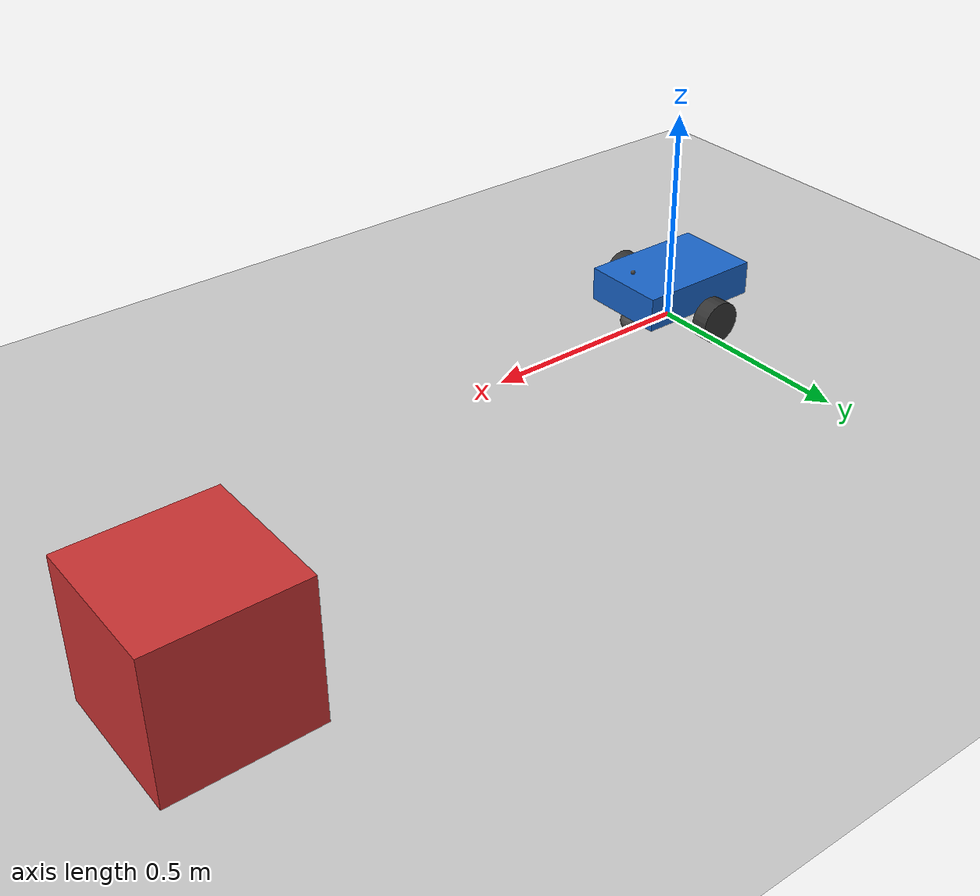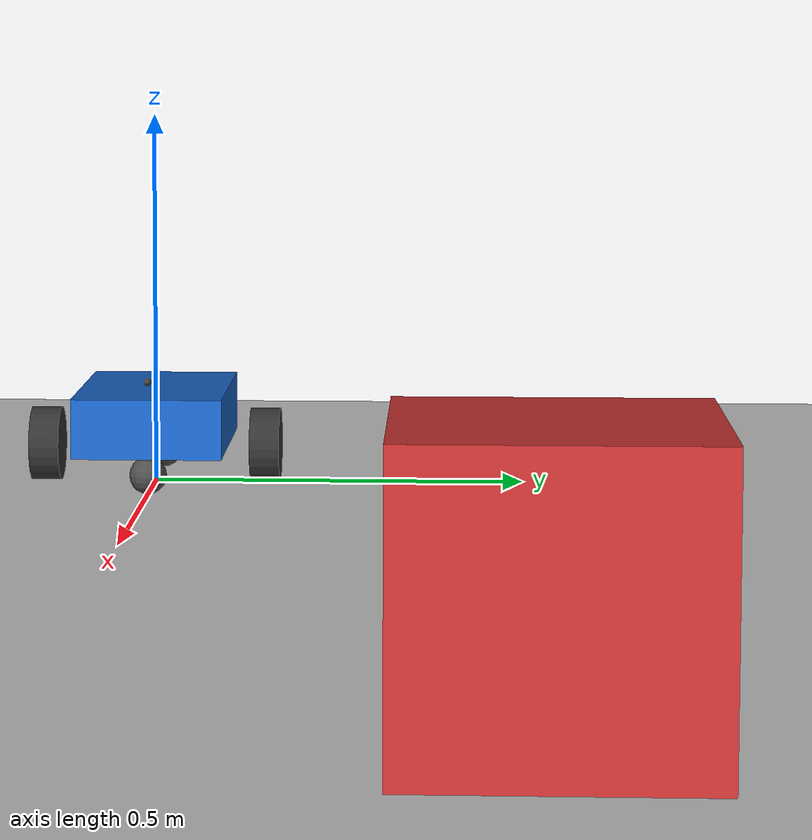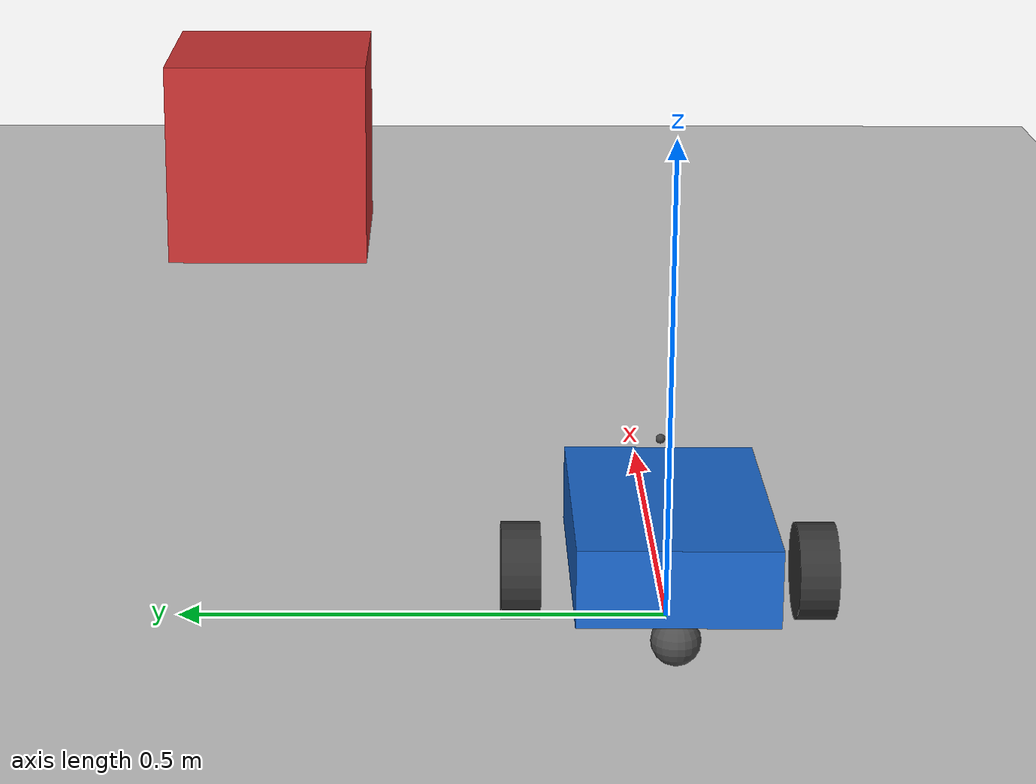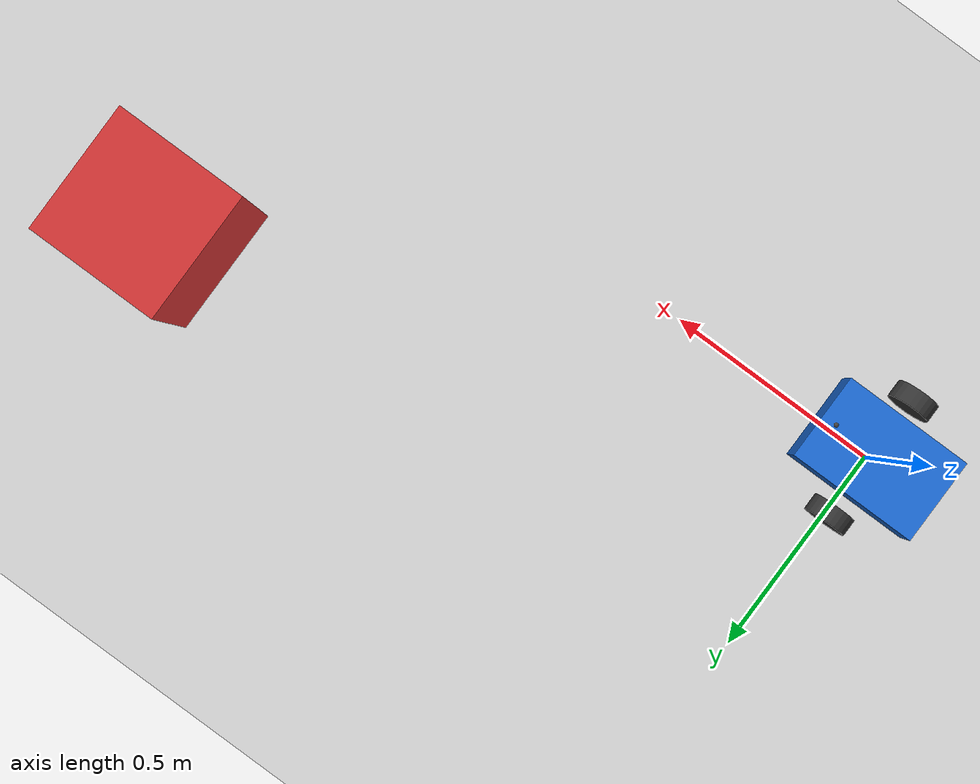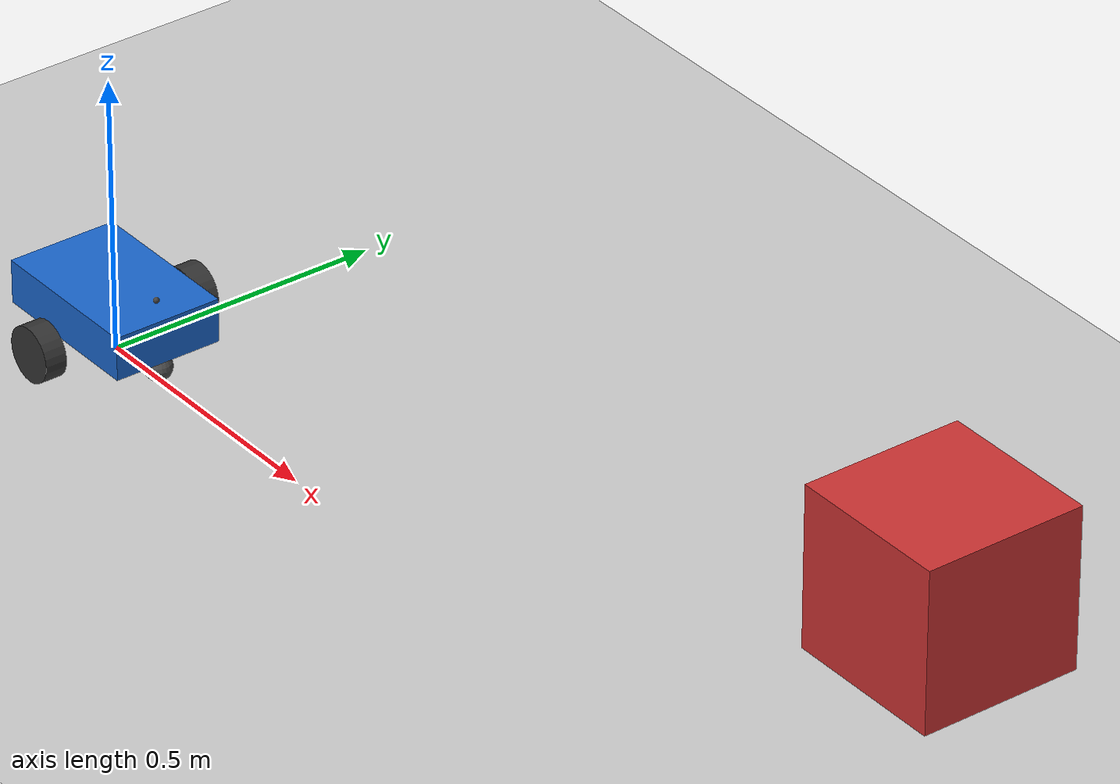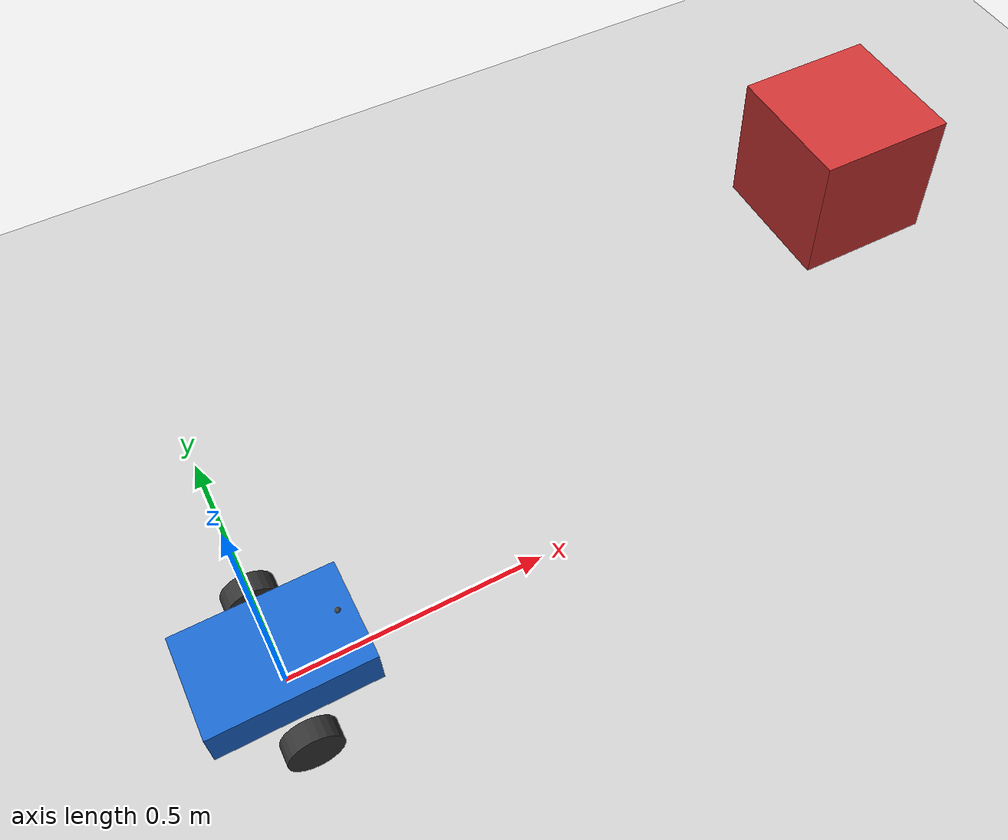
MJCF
<mujoco model="otonav_scene_goal">
  <include file="otonav.xml"/>

  <worldbody>
    <!-- Obstacle: 0.5 m off the centerline, ~1.5 m ahead. Closest approach to
         the straight path is ~0.5 m, comfortably above the 0.3 m clearance bar. -->
    <body name="obstacle" pos="1.5 0.5 0.15">
      <geom name="obstacle_geom" type="box" size="0.15 0.15 0.15" rgba="0.8 0.2 0.2 1"/>
    </body>
  </worldbody>
</mujoco>

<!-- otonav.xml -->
<mujoco model="otonav">
  <compiler angle="radian" autolimits="true"/>
  <option timestep="0.002" integrator="implicitfast" gravity="0 0 -9.81"/>

  <default>
    <joint damping="0.01"/>
    <geom friction="1.0 0.005 0.0001"/>
    <default class="wheel">
      <geom type="cylinder" size="0.05 0.02" zaxis="0 1 0" rgba="0.2 0.2 0.2 1"/>
    </default>
  </default>

  <worldbody>
    <light pos="0 0 3" dir="0 0 -1"/>
    <geom name="floor" type="plane" size="20 20 0.1" rgba="0.8 0.8 0.8 1"/>

    <body name="base_link" pos="0 0 0.05">
      <freejoint name="base_free"/>
      <inertial pos="0 0 0.02" mass="3.0" diaginertia="0.02 0.03 0.04"/>
      <geom name="chassis" type="box" size="0.15 0.10 0.04" pos="0 0 0.04" rgba="0.1 0.4 0.8 1"/>

      <geom name="caster_rear" type="sphere" size="0.025" pos="-0.12 0 -0.025"
            friction="0.0001 0.0001 0.0001" condim="1" rgba="0.3 0.3 0.3 1"/>
      <geom name="caster_front" type="sphere" size="0.025" pos="0.12 0 -0.025"
            friction="0.0001 0.0001 0.0001" condim="1" rgba="0.3 0.3 0.3 1"/>

      <!-- IMU mounting point -->
      <site name="imu_site" pos="0 0 0.04" size="0.01"/>

      <!-- 13-beam forward lidar fan (-90..90 deg, 15 deg step); zaxis = beam ray -->
      <site name="lidar_0" pos="0.12 0 0.10" zaxis="0.0 -1.0 0"/>
      <site name="lidar_1" pos="0.12 0 0.10" zaxis="0.258819 -0.965926 0"/>
      <site name="lidar_2" pos="0.12 0 0.10" zaxis="0.5 -0.866025 0"/>
      <site name="lidar_3" pos="0.12 0 0.10" zaxis="0.707107 -0.707107 0"/>
      <site name="lidar_4" pos="0.12 0 0.10" zaxis="0.866025 -0.5 0"/>
      <site name="lidar_5" pos="0.12 0 0.10" zaxis="0.965926 -0.258819 0"/>
      <site name="lidar_6" pos="0.12 0 0.10" zaxis="1.0 0.0 0"/>
      <site name="lidar_7" pos="0.12 0 0.10" zaxis="0.965926 0.258819 0"/>
      <site name="lidar_8" pos="0.12 0 0.10" zaxis="0.866025 0.5 0"/>
      <site name="lidar_9" pos="0.12 0 0.10" zaxis="0.707107 0.707107 0"/>
      <site name="lidar_10" pos="0.12 0 0.10" zaxis="0.5 0.866025 0"/>
      <site name="lidar_11" pos="0.12 0 0.10" zaxis="0.258819 0.965926 0"/>
      <site name="lidar_12" pos="0.12 0 0.10" zaxis="0.0 1.0 0"/>

      <body name="left_wheel" pos="0 0.15 0">
        <joint name="left_wheel" type="hinge" axis="0 1 0"/>
        <geom class="wheel"/>
      </body>
      <body name="right_wheel" pos="0 -0.15 0">
        <joint name="right_wheel" type="hinge" axis="0 1 0"/>
        <geom class="wheel"/>
      </body>
    </body>
  </worldbody>

  <actuator>
    <velocity name="left_wheel_act"  joint="left_wheel"  kv="5.0" ctrlrange="-30 30"/>
    <velocity name="right_wheel_act" joint="right_wheel" kv="5.0" ctrlrange="-30 30"/>
  </actuator>

  <sensor>
    <jointpos name="left_wheel_pos"  joint="left_wheel"/>
    <jointvel name="left_wheel_vel"  joint="left_wheel"/>
    <jointpos name="right_wheel_pos" joint="right_wheel"/>
    <jointvel name="right_wheel_vel" joint="right_wheel"/>

    <framequat     name="imu_quat" objtype="site" objname="imu_site"/>
    <gyro          name="imu_gyro" site="imu_site"/>
    <accelerometer name="imu_acc"  site="imu_site"/>

    <rangefinder name="lidar_0"  site="lidar_0"/>
    <rangefinder name="lidar_1"  site="lidar_1"/>
    <rangefinder name="lidar_2"  site="lidar_2"/>
    <rangefinder name="lidar_3"  site="lidar_3"/>
    <rangefinder name="lidar_4"  site="lidar_4"/>
    <rangefinder name="lidar_5"  site="lidar_5"/>
    <rangefinder name="lidar_6"  site="lidar_6"/>
    <rangefinder name="lidar_7"  site="lidar_7"/>
    <rangefinder name="lidar_8"  site="lidar_8"/>
    <rangefinder name="lidar_9"  site="lidar_9"/>
    <rangefinder name="lidar_10" site="lidar_10"/>
    <rangefinder name="lidar_11" site="lidar_11"/>
    <rangefinder name="lidar_12" site="lidar_12"/>
  </sensor>
</mujoco>
